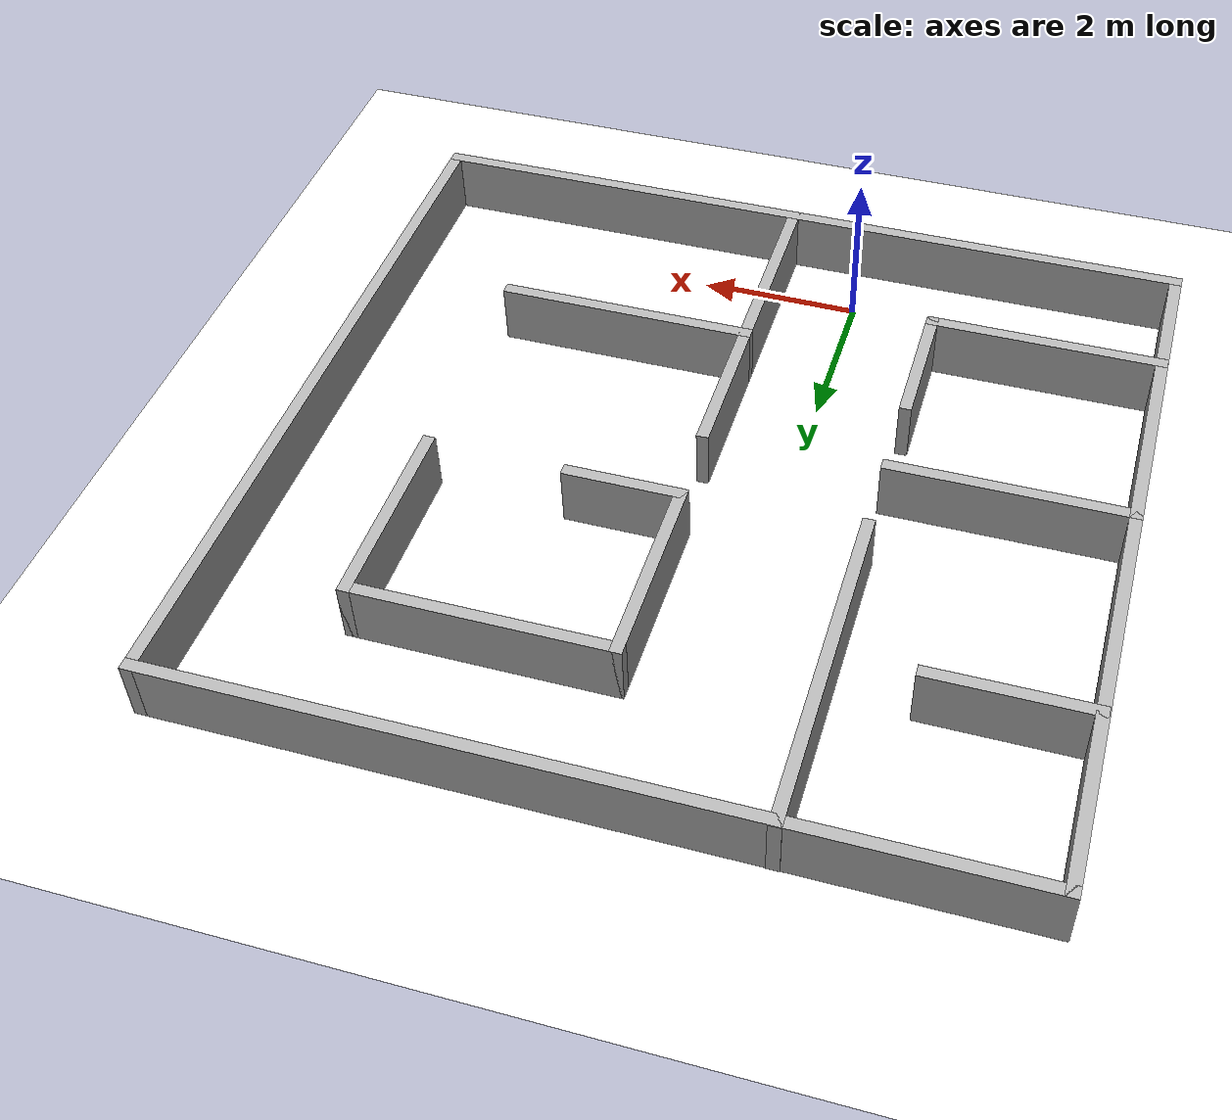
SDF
<?xml version="1.0"?>
<sdf version="1.9">
  <world name="simple_world">
    <!-- Basic directional light (sun) -->
    <light type="directional" name="sun">
      <pose>0 0 10 0 0 0</pose>
      <diffuse>0.8 0.8 0.8 1</diffuse>
      <specular>0.2 0.2 0.2 1</specular>
      <direction>-0.5 0.1 -0.9</direction>
      <cast_shadows>true</cast_shadows>
      <diffuse>0.8 0.8 0.8 0.1</diffuse>
    </light>

    <physics name="1ms" type="ignored">
      <max_step_size>0.001</max_step_size>
      <real_time_factor>1.0</real_time_factor>
      <real_time_update_rate>1000</real_time_update_rate>
    </physics>
    <plugin
      filename="gz-sim-physics-system"
      name="gz::sim::systems::Physics">
    </plugin>
    <plugin
      filename="gz-sim-user-commands-system"
      name="gz::sim::systems::UserCommands">
    </plugin>
    <plugin
      filename="gz-sim-scene-broadcaster-system"
      name="gz::sim::systems::SceneBroadcaster">
    </plugin>
    <plugin filename="libignition-gazebo-imu-system.so"
      name="ignition::gazebo::systems::Imu">
    </plugin>
    <plugin
      filename="gz-sim-sensors-system"
      name="gz::sim::systems::Sensors">
      <render_engine>ogre2</render_engine>
    </plugin>
    <plugin
      filename="gz-sim-contact-system"
      name="gz::sim::systems::Contact">
    </plugin>

    <physics type="ode">
      <real_time_update_rate>1000.0</real_time_update_rate>
      <max_step_size>0.001</max_step_size>
      <real_time_factor>1</real_time_factor>
      <dart>
        <solver>
          <solver_type>pgs</solver_type>
        </solver>
      </dart>
      <ode>
        <solver>
          <type>world</type>
          <iters>150</iters>
          <precon_iters>0</precon_iters>
          <sor>1.400000</sor>
          <use_dynamic_moi_rescaling>1</use_dynamic_moi_rescaling>
        </solver>
        <constraints>
          <cfm>0.00001</cfm>
          <erp>0.2</erp>
          <contact_max_correcting_vel>2000.000000</contact_max_correcting_vel>
          <contact_surface_layer>0.01000</contact_surface_layer>
        </constraints>
      </ode>
    </physics>

    <scene>
      <ambient>0.99 0.99 0.99 1</ambient> <!-- Moderate ambient for visible shadows -->
      <background>0.0 0.0 0.0 1</background>
      <shadows>true</shadows>
    </scene>

    <!-- Ground plane -->
    <model name="ground_plane">
      <static>true</static>
      <link name="link">
        <collision name="collision">
          <geometry>
            <plane>
              <normal>0 0 1</normal>
              <size>100 100</size>
            </plane>
          </geometry>
        </collision>
        <visual name="visual">
          <geometry>
            <plane>
              <normal>0 0 1</normal>
              <size>100 100</size>
            </plane>
          </geometry>
          <material>
            <diffuse>1 1 1 1</diffuse>
          </material>
        </visual>
      </link>
    </model>

    <model name='maze'>
      <pose>0.91729 3.82141 -1.1020 0 0 0</pose>
      <link name='Wall_26'>
        <collision name='Wall_26_Collision'>
          <geometry>
            <box>
              <size>10 0.15 1.2</size>
            </box>
          </geometry>
          <pose>0 0 1.25 0 -0 0</pose>
          <max_contacts>10</max_contacts>
          <surface>
            <friction>
              <torsional>
                <ode />
              </torsional>
              <ode />
            </friction>
          </surface>
        </collision>
        <visual name='Wall_26_Visual'>
          <pose>0 0 1.25 0 -0 0</pose>
          <geometry>
            <box>
              <size>10 0.15 1.2</size>
            </box>
          </geometry>
          <material>
            <diffuse>0.7 0.7 0.7 1</diffuse>
            <ambient>1 1 1 1</ambient>
          </material>
        </visual>
        <pose>0 -4.67846 0 0 -0 0</pose>
        <self_collide>false</self_collide>
        <enable_wind>false</enable_wind>
        <kinematic>false</kinematic>
      </link>
      <link name='Wall_27'>
        <collision name='Wall_27_Collision'>
          <geometry>
            <box>
              <size>9.5 0.15 1.2</size>
            </box>
          </geometry>
          <pose>0 0 1.25 0 -0 0</pose>
          <max_contacts>10</max_contacts>
          <surface>
            <friction>
              <torsional>
                <ode />
              </torsional>
              <ode />
            </friction>
          </surface>
        </collision>
        <visual name='Wall_27_Visual'>
          <pose>0 0 1.25 0 -0 0</pose>
          <geometry>
            <box>
              <size>9.5 0.15 1.2</size>
            </box>
          </geometry>
          <material>
            <diffuse>0.7 0.7 0.7 1</diffuse>
            <ambient>1 1 1 1</ambient>
          </material>
        </visual>
        <pose>4.925 -0.003461 0 0 -0 1.5708</pose>
        <self_collide>false</self_collide>
        <enable_wind>false</enable_wind>
        <kinematic>false</kinematic>
      </link>
      <link name='Wall_28'>
        <collision name='Wall_28_Collision'>
          <geometry>
            <box>
              <size>10 0.15 1.2</size>
            </box>
          </geometry>
          <pose>0 0 1.25 0 -0 0</pose>
          <max_contacts>10</max_contacts>
          <surface>
            <friction>
              <torsional>
                <ode />
              </torsional>
              <ode />
            </friction>
          </surface>
        </collision>
        <visual name='Wall_28_Visual'>
          <pose>0 0 1.25 0 -0 0</pose>
          <geometry>
            <box>
              <size>10 0.15 1.2</size>
            </box>
          </geometry>
          <material>
            <diffuse>0.7 0.7 0.7 1</diffuse>
            <ambient>1 1 1 1</ambient>
          </material>
        </visual>
        <pose>0 4.67154 0 0 -0 3.14159</pose>
        <self_collide>false</self_collide>
        <enable_wind>false</enable_wind>
        <kinematic>false</kinematic>
      </link>
      <link name='Wall_29'>
        <collision name='Wall_29_Collision'>
          <geometry>
            <box>
              <size>9.5 0.15 1.2</size>
            </box>
          </geometry>
          <pose>0 0 1.25 0 -0 0</pose>
          <max_contacts>10</max_contacts>
          <surface>
            <friction>
              <torsional>
                <ode />
              </torsional>
              <ode />
            </friction>
          </surface>
        </collision>
        <visual name='Wall_29_Visual'>
          <pose>0 0 1.25 0 -0 0</pose>
          <geometry>
            <box>
              <size>9.5 0.15 1.2</size>
            </box>
          </geometry>
          <material>
            <diffuse>0.7 0.7 0.7 1</diffuse>
            <ambient>1 1 1 1</ambient>
          </material>
        </visual>
        <pose>-4.925 -0.003461 0 0 -0 -1.5708</pose>
        <self_collide>false</self_collide>
        <enable_wind>false</enable_wind>
        <kinematic>false</kinematic>
      </link>
      <link name='Wall_36'>
        <collision name='Wall_36_Collision'>
          <geometry>
            <box>
              <size>3 0.15 1.2</size>
            </box>
          </geometry>
          <pose>0 0 1.25 0 -0 0</pose>
          <max_contacts>10</max_contacts>
          <surface>
            <friction>
              <torsional>
                <ode />
              </torsional>
              <ode />
            </friction>
          </surface>
        </collision>
        <visual name='Wall_36_Visual'>
          <pose>0 0 1.25 0 -0 0</pose>
          <geometry>
            <box>
              <size>3 0.15 1.2</size>
            </box>
          </geometry>
          <material>
            <diffuse>0.7 0.7 0.7 1</diffuse>
            <ambient>1 1 1 1</ambient>
          </material>
        </visual>
        <pose>-3.49849 -0.40166 0 0 -0 0</pose>
        <self_collide>false</self_collide>
        <enable_wind>false</enable_wind>
        <kinematic>false</kinematic>
      </link>
      <link name='Wall_38'>
        <collision name='Wall_38_Collision'>
          <geometry>
            <box>
              <size>3 0.15 1.2</size>
            </box>
          </geometry>
          <pose>0 0 1.25 0 -0 0</pose>
          <max_contacts>10</max_contacts>
          <surface>
            <friction>
              <torsional>
                <ode />
              </torsional>
              <ode />
            </friction>
          </surface>
        </collision>
        <visual name='Wall_38_Visual'>
          <pose>0 0 1.25 0 -0 0</pose>
          <geometry>
            <box>
              <size>3 0.15 1.2</size>
            </box>
          </geometry>
          <material>
            <diffuse>0.7 0.7 0.7 1</diffuse>
            <ambient>1 1 1 1</ambient>
          </material>
        </visual>
        <pose>-3.49609 -3.05214 0 0 -0 0</pose>
        <self_collide>false</self_collide>
        <enable_wind>false</enable_wind>
        <kinematic>false</kinematic>
      </link>
      <link name='Wall_39'>
        <collision name='Wall_39_Collision'>
          <geometry>
            <box>
              <size>1.75 0.15 1.2</size>
            </box>
          </geometry>
          <pose>0 0 1.25 0 -0 0</pose>
          <max_contacts>10</max_contacts>
          <surface>
            <friction>
              <torsional>
                <ode />
              </torsional>
              <ode />
            </friction>
          </surface>
        </collision>
        <visual name='Wall_39_Visual'>
          <pose>0 0 1.25 0 -0 0</pose>
          <geometry>
            <box>
              <size>1.75 0.15 1.2</size>
            </box>
          </geometry>
          <material>
            <diffuse>0.7 0.7 0.7 1</diffuse>
            <ambient>1 1 1 1</ambient>
          </material>
        </visual>
        <pose>-2.07109 -2.25214 0 0 -0 1.5708</pose>
        <self_collide>false</self_collide>
        <enable_wind>false</enable_wind>
        <kinematic>false</kinematic>
      </link>
      <link name='Wall_43'>
        <collision name='Wall_43_Collision'>
          <geometry>
            <box>
              <size>4.25 0.15 1.2</size>
            </box>
          </geometry>
          <pose>0 0 1.25 0 -0 0</pose>
          <max_contacts>10</max_contacts>
          <surface>
            <friction>
              <torsional>
                <ode />
              </torsional>
              <ode />
            </friction>
          </surface>
        </collision>
        <visual name='Wall_43_Visual'>
          <pose>0 0 1.25 0 -0 0</pose>
          <geometry>
            <box>
              <size>4.25 0.15 1.2</size>
            </box>
          </geometry>
          <material>
            <diffuse>0.7 0.7 0.7 1</diffuse>
            <ambient>1 1 1 1</ambient>
          </material>
        </visual>
        <pose>-2.0495 2.62846 0 0 -0 1.5708</pose>
        <self_collide>false</self_collide>
        <enable_wind>false</enable_wind>
        <kinematic>false</kinematic>
      </link>
      <link name='Wall_45'>
        <collision name='Wall_45_Collision'>
          <geometry>
            <box>
              <size>2 0.15 1.2</size>
            </box>
          </geometry>
          <pose>0 0 1.25 0 -0 0</pose>
          <max_contacts>10</max_contacts>
          <surface>
            <friction>
              <torsional>
                <ode />
              </torsional>
              <ode />
            </friction>
          </surface>
        </collision>
        <visual name='Wall_45_Visual'>
          <pose>0 0 1.25 0 -0 0</pose>
          <geometry>
            <box>
              <size>2 0.15 1.2</size>
            </box>
          </geometry>
          <material>
            <diffuse>0.7 0.7 0.7 1</diffuse>
            <ambient>1 1 1 1</ambient>
          </material>
        </visual>
        <pose>-3.98979 2.47772 0 0 -0 0</pose>
        <self_collide>false</self_collide>
        <enable_wind>false</enable_wind>
        <kinematic>false</kinematic>
      </link>
      <link name='Wall_47'>
        <collision name='Wall_47_Collision'>
          <geometry>
            <box>
              <size>2.5 0.15 1.2</size>
            </box>
          </geometry>
          <pose>0 0 1.25 0 -0 0</pose>
          <max_contacts>10</max_contacts>
          <surface>
            <friction>
              <torsional>
                <ode />
              </torsional>
              <ode />
            </friction>
          </surface>
        </collision>
        <visual name='Wall_47_Visual'>
          <pose>0 0 1.25 0 -0 0</pose>
          <geometry>
            <box>
              <size>2.5 0.15 1.2</size>
            </box>
          </geometry>
          <material>
            <diffuse>0.7 0.7 0.7 1</diffuse>
            <ambient>1 1 1 1</ambient>
          </material>
        </visual>
        <pose>0.097423 1.87505 0 0 -0 -1.5708</pose>
        <self_collide>false</self_collide>
        <enable_wind>false</enable_wind>
        <kinematic>false</kinematic>
      </link>
      <link name='Wall_48'>
        <collision name='Wall_48_Collision'>
          <geometry>
            <box>
              <size>1.5 0.15 1.2</size>
            </box>
          </geometry>
          <pose>0 0 1.25 0 -0 0</pose>
          <max_contacts>10</max_contacts>
          <surface>
            <friction>
              <torsional>
                <ode />
              </torsional>
              <ode />
            </friction>
          </surface>
        </collision>
        <visual name='Wall_48_Visual'>
          <pose>0 0 1.25 0 -0 0</pose>
          <geometry>
            <box>
              <size>1.5 0.15 1.2</size>
            </box>
          </geometry>
          <material>
            <diffuse>0.7 0.7 0.7 1</diffuse>
            <ambient>1 1 1 1</ambient>
          </material>
        </visual>
        <pose>0.772423 0.700048 0 0 -0 0</pose>
        <self_collide>false</self_collide>
        <enable_wind>false</enable_wind>
        <kinematic>false</kinematic>
      </link>
      <link name='Wall_50'>
        <collision name='Wall_50_Collision'>
          <geometry>
            <box>
              <size>3.25 0.15 1.2</size>
            </box>
          </geometry>
          <pose>0 0 1.25 0 -0 0</pose>
          <max_contacts>10</max_contacts>
          <surface>
            <friction>
              <torsional>
                <ode />
              </torsional>
              <ode />
            </friction>
          </surface>
        </collision>
        <visual name='Wall_50_Visual'>
          <pose>0 0 1.25 0 -0 0</pose>
          <geometry>
            <box>
              <size>3.25 0.15 1.2</size>
            </box>
          </geometry>
          <material>
            <diffuse>0.7 0.7 0.7 1</diffuse>
            <ambient>1 1 1 1</ambient>
          </material>
        </visual>
        <pose>1.64742 3.05005 0 0 -0 0</pose>
        <self_collide>false</self_collide>
        <enable_wind>false</enable_wind>
        <kinematic>false</kinematic>
      </link>
      <link name='Wall_51'>
        <collision name='Wall_51_Collision'>
          <geometry>
            <box>
              <size>2.5 0.15 1.2</size>
            </box>
          </geometry>
          <pose>0 0 1.25 0 -0 0</pose>
          <max_contacts>10</max_contacts>
          <surface>
            <friction>
              <torsional>
                <ode />
              </torsional>
              <ode />
            </friction>
          </surface>
        </collision>
        <visual name='Wall_51_Visual'>
          <pose>0 0 1.25 0 -0 0</pose>
          <geometry>
            <box>
              <size>2.5 0.15 1.2</size>
            </box>
          </geometry>
          <material>
            <diffuse>0.7 0.7 0.7 1</diffuse>
            <ambient>1 1 1 1</ambient>
          </material>
        </visual>
        <pose>3.19742 1.87505 0 0 -0 -1.5708</pose>
        <self_collide>false</self_collide>
        <enable_wind>false</enable_wind>
        <kinematic>false</kinematic>
      </link>
      <link name='Wall_53'>
        <collision name='Wall_53_Collision'>
          <geometry>
            <box>
              <size>4.5 0.15 1.2</size>
            </box>
          </geometry>
          <pose>0 0 1.25 0 -0 0</pose>
          <max_contacts>10</max_contacts>
          <surface>
            <friction>
              <torsional>
                <ode />
              </torsional>
              <ode />
            </friction>
          </surface>
        </collision>
        <visual name='Wall_53_Visual'>
          <pose>0 0 1.25 0 -0 0</pose>
          <geometry>
            <box>
              <size>4.5 0.15 1.2</size>
            </box>
          </geometry>
          <material>
            <diffuse>0.7 0.7 0.7 1</diffuse>
            <ambient>1 1 1 1</ambient>
          </material>
        </visual>
        <pose>0.120423 -2.50295 0 0 -0 1.5708</pose>
        <self_collide>false</self_collide>
        <enable_wind>false</enable_wind>
        <kinematic>false</kinematic>
      </link>
      <link name='Wall_55'>
        <collision name='Wall_55_Collision'>
          <geometry>
            <box>
              <size>3.25 0.15 1.2</size>
            </box>
          </geometry>
          <pose>0 0 1.25 0 -0 0</pose>
          <max_contacts>10</max_contacts>
          <surface>
            <friction>
              <torsional>
                <ode />
              </torsional>
              <ode />
            </friction>
          </surface>
        </collision>
        <visual name='Wall_55_Visual'>
          <pose>0 0 1.25 0 -0 0</pose>
          <geometry>
            <box>
              <size>3.25 0.15 1.2</size>
            </box>
          </geometry>
          <material>
            <diffuse>0.7 0.7 0.7 1</diffuse>
            <ambient>1 1 1 1</ambient>
          </material>
        </visual>
        <pose>1.67042 -2.19395 0 0 -0 0</pose>
        <self_collide>false</self_collide>
        <enable_wind>false</enable_wind>
        <kinematic>false</kinematic>
      </link>
      <static>1</static>
    </model>

  </world>
</sdf>
